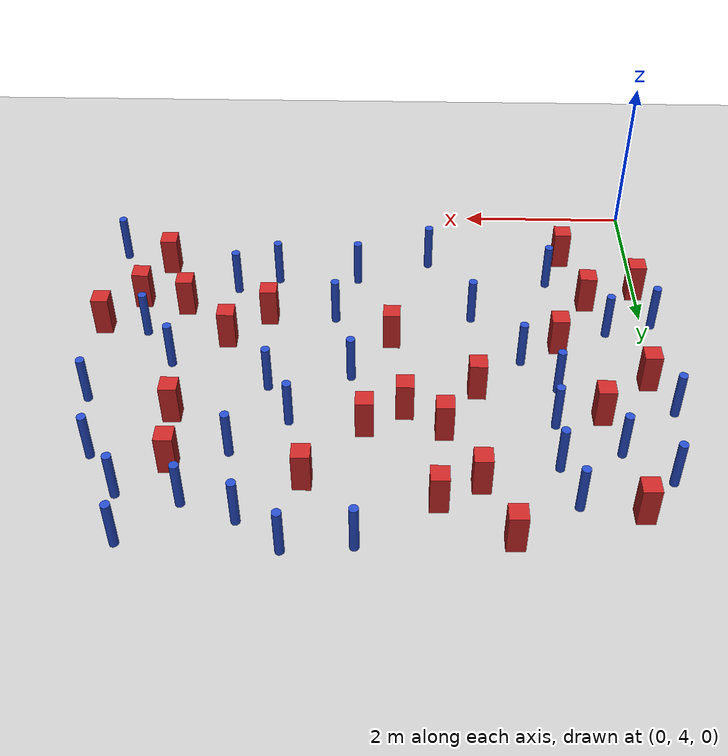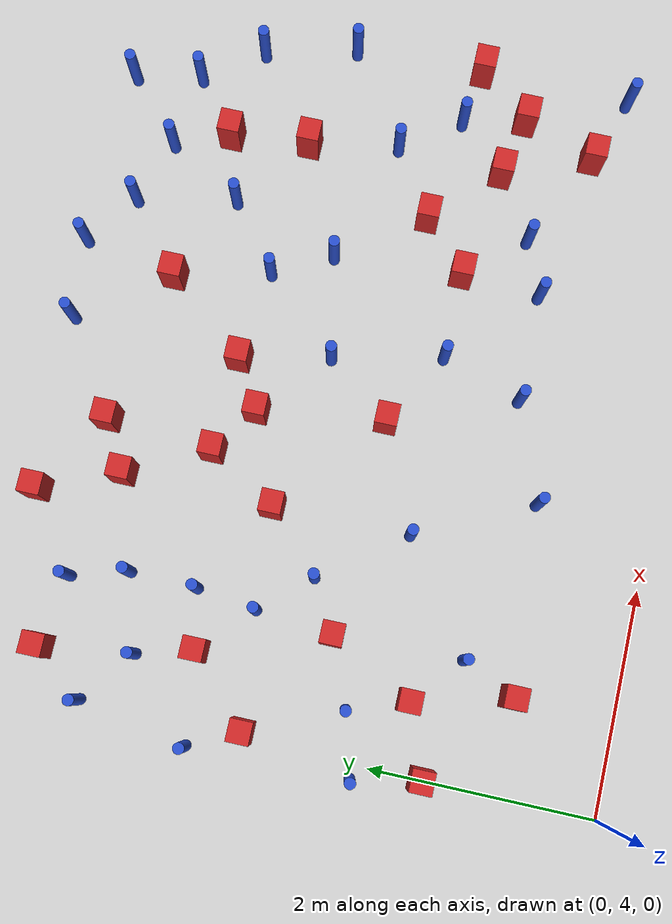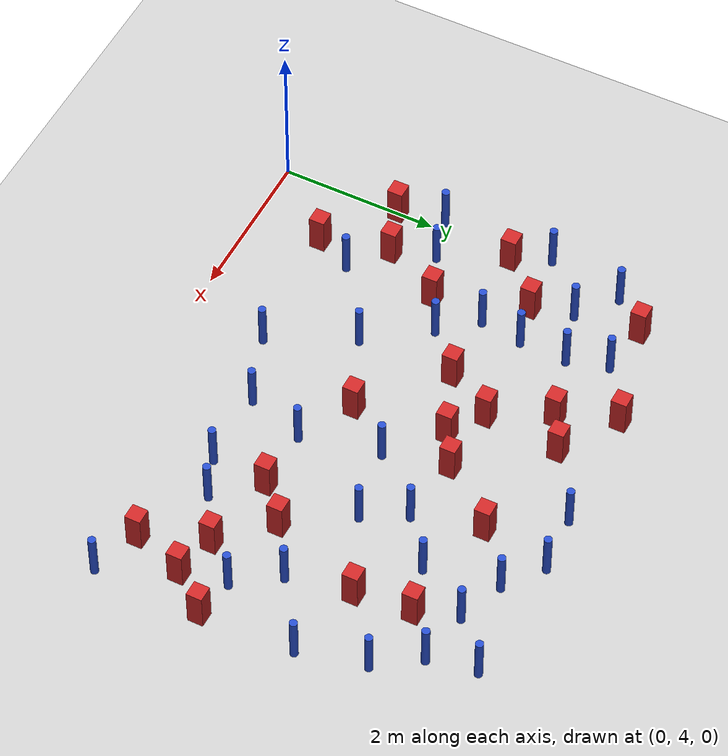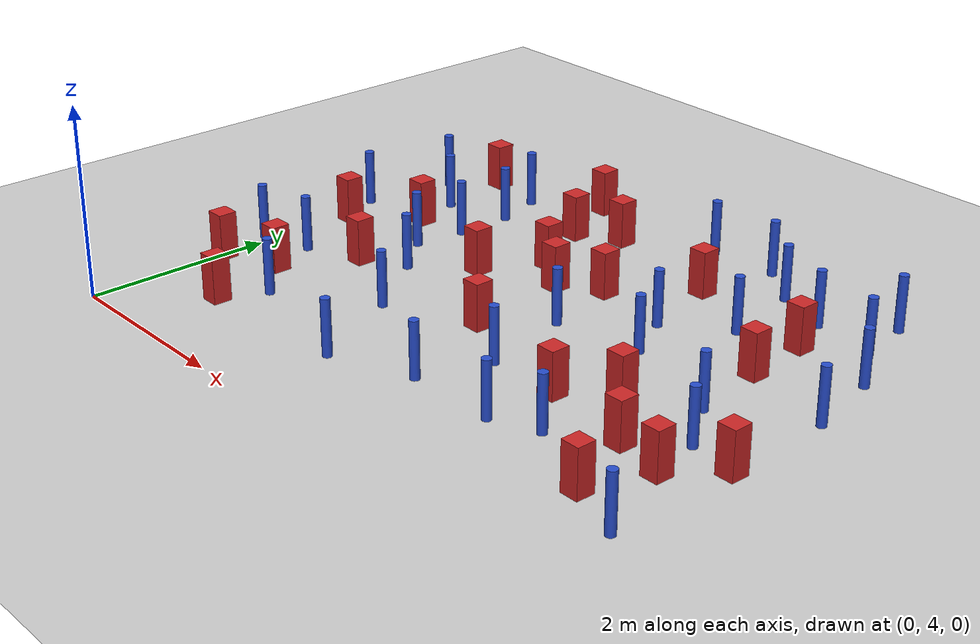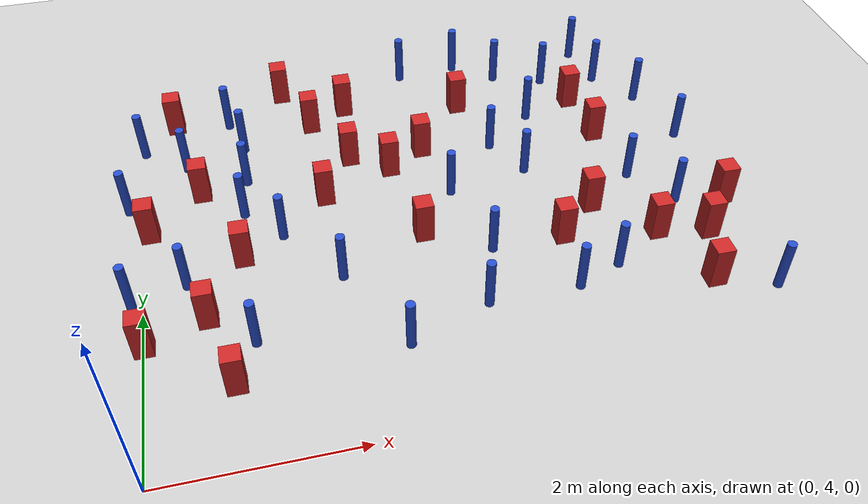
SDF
<sdf version="1.6">
 <world name="default">
  <model name="ground_plane">
   <static>1</static>
   <link name="link">
    <collision name="collision">
     <geometry><plane><normal>0 0 1</normal><size>100 100</size></plane></geometry>
     <surface><friction><ode><mu>100</mu><mu2>50</mu2></ode></friction></surface>
    </collision>
    <visual name="visual">
     <cast_shadows>0</cast_shadows>
     <geometry><plane><normal>0 0 1</normal><size>100 100</size></plane></geometry>
     <material>
      <ambient>1.0 1.0 1.0 1.0</ambient>
      <diffuse>0.8 0.8 0.8 1.0</diffuse>
      <specular>0.01 0.01 0.01 1.000000</specular>
     </material>
    </visual>
   </link>
  </model>
  <model name="pole_obstacle0">
   <static>true</static>
   <pose>0.0405761902183 8.55352330351 -9.47619616065e-06 5.49618799737e-07 2.36310414033e-07 -1.55090534817e-07</pose>
   <link name="link">
    <pose>0 0 0.3 0 -0 0</pose>
    <inertial>
     <mass>1</mass>
     <inertia><ixx>0.145833</ixx><ixy>0</ixy><ixz>0</ixz><iyy>0.145833</iyy><iyz>0</iyz><izz>0.125</izz></inertia>
    </inertial>
    <collision name="collision">
     <geometry><cylinder><radius>0.05</radius><length>.6</length></cylinder></geometry>
    </collision>
    <visual name="visual">
     <geometry><cylinder><radius>0.05</radius><length>.6</length></cylinder></geometry>
     <material>
      <script><name>Gazebo/Blue</name><uri>file://media/materials/scripts/gazebo.material</uri></script>
     </material>
    </visual>
   </link>
  </model>
  <model name="pole_obstacle3">
   <static>true</static>
   <pose>4.53063861416 9.14221263747 -9.47619616065e-06 5.49618799737e-07 2.36310414065e-07 -1.55090534796e-07</pose>
   <link name="link">
    <pose>0 0 0.3 0 -0 0</pose>
    <inertial>
     <mass>1</mass>
     <inertia><ixx>0.145833</ixx><ixy>0</ixy><ixz>0</ixz><iyy>0.145833</iyy><iyz>0</iyz><izz>0.125</izz></inertia>
    </inertial>
    <collision name="collision">
     <geometry><cylinder><radius>0.05</radius><length>.6</length></cylinder></geometry>
    </collision>
    <visual name="visual">
     <geometry><cylinder><radius>0.05</radius><length>.6</length></cylinder></geometry>
     <material>
      <script><name>Gazebo/Blue</name><uri>file://media/materials/scripts/gazebo.material</uri></script>
     </material>
    </visual>
   </link>
  </model>
  <model name="square_post_obstacle3">
   <static>true</static>
   <pose>2.48934977216 8.89152247828 -6.11067671241e-07 -5.50515727128e-06 -8.79689657224e-07 2.37013304536e-05</pose>
   <link name="link">
    <pose>0 0 0.25 0 -0 0</pose>
    <inertial>
     <mass>100</mass>
     <inertia>
      <ixx>0.166667</ixx>
      <ixy>0</ixy>
      <ixz>0</ixz>
      <iyy>0.166667</iyy>
      <iyz>0</iyz>
      <izz>0.166667</izz>
     </inertia>
    </inertial>
    <collision name="collision"><geometry><box><size>.2 .2 .5</size></box></geometry></collision>
    <visual name="visual">
     <geometry><box><size>.2 .2 .5</size></box></geometry>
     <material>
      <script><name>Gazebo/Red</name><uri>file://media/materials/scripts/gazebo.material</uri></script>
     </material>
    </visual>
   </link>
  </model>
  <model name="square_post_obstacle4">
   <static>true</static>
   <pose>2.0309213885 7.29000807328 -6.11067671241e-07 -5.50515727128e-06 -8.79689657224e-07 2.37013304536e-05</pose>
   <link name="link">
    <pose>0 0 0.25 0 -0 0</pose>
    <inertial>
     <mass>100</mass>
     <inertia>
      <ixx>0.166667</ixx>
      <ixy>0</ixy>
      <ixz>0</ixz>
      <iyy>0.166667</iyy>
      <iyz>0</iyz>
      <izz>0.166667</izz>
     </inertia>
    </inertial>
    <collision name="collision"><geometry><box><size>.2 .2 .5</size></box></geometry></collision>
    <visual name="visual">
     <geometry><box><size>.2 .2 .5</size></box></geometry>
     <material>
      <script><name>Gazebo/Red</name><uri>file://media/materials/scripts/gazebo.material</uri></script>
     </material>
    </visual>
   </link>
  </model>
  <model name="pole_obstacle9">
   <static>true</static>
   <pose>4.38289889013 7.25559182858 -9.47619616065e-06 5.49618799737e-07 2.36310414037e-07 -1.55090534814e-07</pose>
   <link name="link">
    <pose>0 0 0.3 0 -0 0</pose>
    <inertial>
     <mass>1</mass>
     <inertia><ixx>0.145833</ixx><ixy>0</ixy><ixz>0</ixz><iyy>0.145833</iyy><iyz>0</iyz><izz>0.125</izz></inertia>
    </inertial>
    <collision name="collision">
     <geometry><cylinder><radius>0.05</radius><length>.6</length></cylinder></geometry>
    </collision>
    <visual name="visual">
     <geometry><cylinder><radius>0.05</radius><length>.6</length></cylinder></geometry>
     <material>
      <script><name>Gazebo/Blue</name><uri>file://media/materials/scripts/gazebo.material</uri></script>
     </material>
    </visual>
   </link>
  </model>
  <model name="pole_obstacle19">
   <static>true</static>
   <pose>1.18842826301 7.77616489944 -9.47619616065e-06 5.49618799737e-07 2.36310414061e-07 -1.550905348e-07</pose>
   <link name="link">
    <pose>0 0 0.3 0 -0 0</pose>
    <inertial>
     <mass>1</mass>
     <inertia><ixx>0.145833</ixx><ixy>0</ixy><ixz>0</ixz><iyy>0.145833</iyy><iyz>0</iyz><izz>0.125</izz></inertia>
    </inertial>
    <collision name="collision">
     <geometry><cylinder><radius>0.05</radius><length>.6</length></cylinder></geometry>
    </collision>
    <visual name="visual">
     <geometry><cylinder><radius>0.05</radius><length>.6</length></cylinder></geometry>
     <material>
      <script><name>Gazebo/Blue</name><uri>file://media/materials/scripts/gazebo.material</uri></script>
     </material>
    </visual>
   </link>
  </model>
  <model name="pole_obstacle20">
   <static>true</static>
   <pose>1.05609687835 8.89631255664 -9.47619616065e-06 5.49618799737e-07 2.36310414046e-07 -1.55090534809e-07</pose>
   <link name="link">
    <pose>0 0 0.3 0 -0 0</pose>
    <inertial>
     <mass>1</mass>
     <inertia><ixx>0.145833</ixx><ixy>0</ixy><ixz>0</ixz><iyy>0.145833</iyy><iyz>0</iyz><izz>0.125</izz></inertia>
    </inertial>
    <collision name="collision">
     <geometry><cylinder><radius>0.05</radius><length>.6</length></cylinder></geometry>
    </collision>
    <visual name="visual">
     <geometry><cylinder><radius>0.05</radius><length>.6</length></cylinder></geometry>
     <material>
      <script><name>Gazebo/Blue</name><uri>file://media/materials/scripts/gazebo.material</uri></script>
     </material>
    </visual>
   </link>
  </model>
  <model name="pole_obstacle22">
   <static>true</static>
   <pose>4.70830090613 8.24106829523 -9.47619616065e-06 5.49618799737e-07 2.36310414065e-07 -1.55090534796e-07</pose>
   <link name="link">
    <pose>0 0 0.3 0 -0 0</pose>
    <inertial>
     <mass>1</mass>
     <inertia><ixx>0.145833</ixx><ixy>0</ixy><ixz>0</ixz><iyy>0.145833</iyy><iyz>0</iyz><izz>0.125</izz></inertia>
    </inertial>
    <collision name="collision">
     <geometry><cylinder><radius>0.05</radius><length>.6</length></cylinder></geometry>
    </collision>
    <visual name="visual">
     <geometry><cylinder><radius>0.05</radius><length>.6</length></cylinder></geometry>
     <material>
      <script><name>Gazebo/Blue</name><uri>file://media/materials/scripts/gazebo.material</uri></script>
     </material>
    </visual>
   </link>
  </model>
  <model name="pole_obstacle28">
   <static>true</static>
   <pose>2.54747611865 5.01578551102 -9.47619616065e-06 5.49618799738e-07 2.3631041406e-07 -1.55090534801e-07</pose>
   <link name="link">
    <pose>0 0 0.3 0 -0 0</pose>
    <inertial>
     <mass>1</mass>
     <inertia><ixx>0.145833</ixx><ixy>0</ixy><ixz>0</ixz><iyy>0.145833</iyy><iyz>0</iyz><izz>0.125</izz></inertia>
    </inertial>
    <collision name="collision">
     <geometry><cylinder><radius>0.05</radius><length>.6</length></cylinder></geometry>
    </collision>
    <visual name="visual">
     <geometry><cylinder><radius>0.05</radius><length>.6</length></cylinder></geometry>
     <material>
      <script><name>Gazebo/Blue</name><uri>file://media/materials/scripts/gazebo.material</uri></script>
     </material>
    </visual>
   </link>
  </model>
  <model name="square_post_obstacle27">
   <static>true</static>
   <pose>0.419440765279 8.99323714383 -6.11067671241e-07 -5.50515727128e-06 -8.79689657224e-07 2.37013304536e-05</pose>
   <link name="link">
    <pose>0 0 0.25 0 -0 0</pose>
    <inertial>
     <mass>100</mass>
     <inertia>
      <ixx>0.166667</ixx>
      <ixy>0</ixy>
      <ixz>0</ixz>
      <iyy>0.166667</iyy>
      <iyz>0</iyz>
      <izz>0.166667</izz>
     </inertia>
    </inertial>
    <collision name="collision"><geometry><box><size>.2 .2 .5</size></box></geometry></collision>
    <visual name="visual">
     <geometry><box><size>.2 .2 .5</size></box></geometry>
     <material>
      <script><name>Gazebo/Red</name><uri>file://media/materials/scripts/gazebo.material</uri></script>
     </material>
    </visual>
   </link>
  </model>
  <model name="square_post_obstacle39">
   <static>true</static>
   <pose>0.859296238766 4.90684172289 -6.11067671241e-07 -5.50515727128e-06 -8.79689657224e-07 2.37013304536e-05</pose>
   <link name="link">
    <pose>0 0 0.25 0 -0 0</pose>
    <inertial>
     <mass>100</mass>
     <inertia>
      <ixx>0.166667</ixx>
      <ixy>0</ixy>
      <ixz>0</ixz>
      <iyy>0.166667</iyy>
      <iyz>0</iyz>
      <izz>0.166667</izz>
     </inertia>
    </inertial>
    <collision name="collision"><geometry><box><size>.2 .2 .5</size></box></geometry></collision>
    <visual name="visual">
     <geometry><box><size>.2 .2 .5</size></box></geometry>
     <material>
      <script><name>Gazebo/Red</name><uri>file://media/materials/scripts/gazebo.material</uri></script>
     </material>
    </visual>
   </link>
  </model>
  <model name="square_post_obstacle45">
   <static>true</static>
   <pose>2.99517926249 6.4729525334 -6.11067671241e-07 -5.50515727128e-06 -8.79689657224e-07 2.37013304536e-05</pose>
   <link name="link">
    <pose>0 0 0.25 0 -0 0</pose>
    <inertial>
     <mass>100</mass>
     <inertia>
      <ixx>0.166667</ixx>
      <ixy>0</ixy>
      <ixz>0</ixz>
      <iyy>0.166667</iyy>
      <iyz>0</iyz>
      <izz>0.166667</izz>
     </inertia>
    </inertial>
    <collision name="collision"><geometry><box><size>.2 .2 .5</size></box></geometry></collision>
    <visual name="visual">
     <geometry><box><size>.2 .2 .5</size></box></geometry>
     <material>
      <script><name>Gazebo/Red</name><uri>file://media/materials/scripts/gazebo.material</uri></script>
     </material>
    </visual>
   </link>
  </model>
  <model name="pole_obstacle68">
   <static>true</static>
   <pose>3.42901976748 5.35178134434 -9.47619616065e-06 5.49618799738e-07 2.3631041406e-07 -1.55090534801e-07</pose>
   <link name="link">
    <pose>0 0 0.3 0 -0 0</pose>
    <inertial>
     <mass>1</mass>
     <inertia><ixx>0.145833</ixx><ixy>0</ixy><ixz>0</ixz><iyy>0.145833</iyy><iyz>0</iyz><izz>0.125</izz></inertia>
    </inertial>
    <collision name="collision">
     <geometry><cylinder><radius>0.05</radius><length>.6</length></cylinder></geometry>
    </collision>
    <visual name="visual">
     <geometry><cylinder><radius>0.05</radius><length>.6</length></cylinder></geometry>
     <material>
      <script><name>Gazebo/Blue</name><uri>file://media/materials/scripts/gazebo.material</uri></script>
     </material>
    </visual>
   </link>
  </model>
  <model name="square_post_obstacle59">
   <static>true</static>
   <pose>5.48688079807 5.92642891384 -6.11067671241e-07 -5.50515727128e-06 -8.79689657224e-07 2.37013304536e-05</pose>
   <link name="link">
    <pose>0 0 0.25 0 -0 0</pose>
    <inertial>
     <mass>100</mass>
     <inertia>
      <ixx>0.166667</ixx>
      <ixy>0</ixy>
      <ixz>0</ixz>
      <iyy>0.166667</iyy>
      <iyz>0</iyz>
      <izz>0.166667</izz>
     </inertia>
    </inertial>
    <collision name="collision"><geometry><box><size>.2 .2 .5</size></box></geometry></collision>
    <visual name="visual">
     <geometry><box><size>.2 .2 .5</size></box></geometry>
     <material>
      <script><name>Gazebo/Red</name><uri>file://media/materials/scripts/gazebo.material</uri></script>
     </material>
    </visual>
   </link>
  </model>
  <model name="pole_obstacle75">
   <static>true</static>
   <pose>3.44980734601 7.07527998909 -9.47619616065e-06 5.49618799738e-07 2.3631041406e-07 -1.55090534801e-07</pose>
   <link name="link">
    <pose>0 0 0.3 0 -0 0</pose>
    <inertial>
     <mass>1</mass>
     <inertia><ixx>0.145833</ixx><ixy>0</ixy><ixz>0</ixz><iyy>0.145833</iyy><iyz>0</iyz><izz>0.125</izz></inertia>
    </inertial>
    <collision name="collision">
     <geometry><cylinder><radius>0.05</radius><length>.6</length></cylinder></geometry>
    </collision>
    <visual name="visual">
     <geometry><cylinder><radius>0.05</radius><length>.6</length></cylinder></geometry>
     <material>
      <script><name>Gazebo/Blue</name><uri>file://media/materials/scripts/gazebo.material</uri></script>
     </material>
    </visual>
   </link>
  </model>
  <model name="pole_obstacle83">
   <static>true</static>
   <pose>3.67283193166 6.08723694189 -9.47619616065e-06 5.49618799738e-07 2.3631041406e-07 -1.55090534801e-07</pose>
   <link name="link">
    <pose>0 0 0.3 0 -0 0</pose>
    <inertial>
     <mass>1</mass>
     <inertia><ixx>0.145833</ixx><ixy>0</ixy><ixz>0</ixz><iyy>0.145833</iyy><iyz>0</iyz><izz>0.125</izz></inertia>
    </inertial>
    <collision name="collision">
     <geometry><cylinder><radius>0.05</radius><length>.6</length></cylinder></geometry>
    </collision>
    <visual name="visual">
     <geometry><cylinder><radius>0.05</radius><length>.6</length></cylinder></geometry>
     <material>
      <script><name>Gazebo/Blue</name><uri>file://media/materials/scripts/gazebo.material</uri></script>
     </material>
    </visual>
   </link>
  </model>
  <model name="square_post_obstacle73">
   <static>true</static>
   <pose>3.2736538085 7.87880397561 -6.11067671241e-07 -5.50515727128e-06 -8.79689657224e-07 2.37013304536e-05</pose>
   <link name="link">
    <pose>0 0 0.25 0 -0 0</pose>
    <inertial>
     <mass>100</mass>
     <inertia>
      <ixx>0.166667</ixx>
      <ixy>0</ixy>
      <ixz>0</ixz>
      <iyy>0.166667</iyy>
      <iyz>0</iyz>
      <izz>0.166667</izz>
     </inertia>
    </inertial>
    <collision name="collision"><geometry><box><size>.2 .2 .5</size></box></geometry></collision>
    <visual name="visual">
     <geometry><box><size>.2 .2 .5</size></box></geometry>
     <material>
      <script><name>Gazebo/Red</name><uri>file://media/materials/scripts/gazebo.material</uri></script>
     </material>
    </visual>
   </link>
  </model>
  <model name="pole_obstacle86">
   <static>true</static>
   <pose>0.448916070269 6.28702632633 -9.47619616065e-06 5.49618799737e-07 2.36310414065e-07 -1.55090534796e-07</pose>
   <link name="link">
    <pose>0 0 0.3 0 -0 0</pose>
    <inertial>
     <mass>1</mass>
     <inertia><ixx>0.145833</ixx><ixy>0</ixy><ixz>0</ixz><iyy>0.145833</iyy><iyz>0</iyz><izz>0.125</izz></inertia>
    </inertial>
    <collision name="collision">
     <geometry><cylinder><radius>0.05</radius><length>.6</length></cylinder></geometry>
    </collision>
    <visual name="visual">
     <geometry><cylinder><radius>0.05</radius><length>.6</length></cylinder></geometry>
     <material>
      <script><name>Gazebo/Blue</name><uri>file://media/materials/scripts/gazebo.material</uri></script>
     </material>
    </visual>
   </link>
  </model>
  <model name="square_post_obstacle76">
   <static>true</static>
   <pose>5.3180962215 8.42635804727 -6.11067671241e-07 -5.50515727128e-06 -8.79689657224e-07 2.37013304536e-05</pose>
   <link name="link">
    <pose>0 0 0.25 0 -0 0</pose>
    <inertial>
     <mass>100</mass>
     <inertia>
      <ixx>0.166667</ixx>
      <ixy>0</ixy>
      <ixz>0</ixz>
      <iyy>0.166667</iyy>
      <iyz>0</iyz>
      <izz>0.166667</izz>
     </inertia>
    </inertial>
    <collision name="collision"><geometry><box><size>.2 .2 .5</size></box></geometry></collision>
    <visual name="visual">
     <geometry><box><size>.2 .2 .5</size></box></geometry>
     <material>
      <script><name>Gazebo/Red</name><uri>file://media/materials/scripts/gazebo.material</uri></script>
     </material>
    </visual>
   </link>
  </model>
  <model name="pole_obstacle89">
   <static>true</static>
   <pose>1.08171206353 5.37697290941 -9.47619616065e-06 5.49618799737e-07 2.36310414061e-07 -1.550905348e-07</pose>
   <link name="link">
    <pose>0 0 0.3 0 -0 0</pose>
    <inertial>
     <mass>1</mass>
     <inertia><ixx>0.145833</ixx><ixy>0</ixy><ixz>0</ixz><iyy>0.145833</iyy><iyz>0</iyz><izz>0.125</izz></inertia>
    </inertial>
    <collision name="collision">
     <geometry><cylinder><radius>0.05</radius><length>.6</length></cylinder></geometry>
    </collision>
    <visual name="visual">
     <geometry><cylinder><radius>0.05</radius><length>.6</length></cylinder></geometry>
     <material>
      <script><name>Gazebo/Blue</name><uri>file://media/materials/scripts/gazebo.material</uri></script>
     </material>
    </visual>
   </link>
  </model>
  <model name="pole_obstacle96">
   <static>true</static>
   <pose>4.41311777781 5.3623191488 -9.47619616065e-06 5.49618799737e-07 2.36310414037e-07 -1.55090534814e-07</pose>
   <link name="link">
    <pose>0 0 0.3 0 -0 0</pose>
    <inertial>
     <mass>1</mass>
     <inertia><ixx>0.145833</ixx><ixy>0</ixy><ixz>0</ixz><iyy>0.145833</iyy><iyz>0</iyz><izz>0.125</izz></inertia>
    </inertial>
    <collision name="collision">
     <geometry><cylinder><radius>0.05</radius><length>.6</length></cylinder></geometry>
    </collision>
    <visual name="visual">
     <geometry><cylinder><radius>0.05</radius><length>.6</length></cylinder></geometry>
     <material>
      <script><name>Gazebo/Blue</name><uri>file://media/materials/scripts/gazebo.material</uri></script>
     </material>
    </visual>
   </link>
  </model>
  <model name="pole_obstacle106">
   <static>true</static>
   <pose>4.05709642306 9.49357864081 -9.47619616065e-06 5.49618799737e-07 2.36310414065e-07 -1.55090534796e-07</pose>
   <link name="link">
    <pose>0 0 0.3 0 -0 0</pose>
    <inertial>
     <mass>1</mass>
     <inertia><ixx>0.145833</ixx><ixy>0</ixy><ixz>0</ixz><iyy>0.145833</iyy><iyz>0</iyz><izz>0.125</izz></inertia>
    </inertial>
    <collision name="collision">
     <geometry><cylinder><radius>0.05</radius><length>.6</length></cylinder></geometry>
    </collision>
    <visual name="visual">
     <geometry><cylinder><radius>0.05</radius><length>.6</length></cylinder></geometry>
     <material>
      <script><name>Gazebo/Blue</name><uri>file://media/materials/scripts/gazebo.material</uri></script>
     </material>
    </visual>
   </link>
  </model>
  <model name="square_post_obstacle105">
   <static>true</static>
   <pose>0.0881795094278 7.11734922823 -6.11067671241e-07 -5.50515727128e-06 -8.79689657224e-07 2.37013304536e-05</pose>
   <link name="link">
    <pose>0 0 0.25 0 -0 0</pose>
    <inertial>
     <mass>100</mass>
     <inertia>
      <ixx>0.166667</ixx>
      <ixy>0</ixy>
      <ixz>0</ixz>
      <iyy>0.166667</iyy>
      <iyz>0</iyz>
      <izz>0.166667</izz>
     </inertia>
    </inertial>
    <collision name="collision"><geometry><box><size>.2 .2 .5</size></box></geometry></collision>
    <visual name="visual">
     <geometry><box><size>.2 .2 .5</size></box></geometry>
     <material>
      <script><name>Gazebo/Red</name><uri>file://media/materials/scripts/gazebo.material</uri></script>
     </material>
    </visual>
   </link>
  </model>
  <model name="square_post_obstacle109">
   <static>true</static>
   <pose>0.0169615862561 5.54200350497 -6.11067671241e-07 -5.50515727128e-06 -8.79689657224e-07 2.37013304536e-05</pose>
   <link name="link">
    <pose>0 0 0.25 0 -0 0</pose>
    <inertial>
     <mass>100</mass>
     <inertia>
      <ixx>0.166667</ixx>
      <ixy>0</ixy>
      <ixz>0</ixz>
      <iyy>0.166667</iyy>
      <iyz>0</iyz>
      <izz>0.166667</izz>
     </inertia>
    </inertial>
    <collision name="collision"><geometry><box><size>.2 .2 .5</size></box></geometry></collision>
    <visual name="visual">
     <geometry><box><size>.2 .2 .5</size></box></geometry>
     <material>
      <script><name>Gazebo/Red</name><uri>file://media/materials/scripts/gazebo.material</uri></script>
     </material>
    </visual>
   </link>
  </model>
  <model name="square_post_obstacle120">
   <static>true</static>
   <pose>1.05030276088 6.53369957781 -6.11067671241e-07 -5.50515727128e-06 -8.79689657224e-07 2.37013304536e-05</pose>
   <link name="link">
    <pose>0 0 0.25 0 -0 0</pose>
    <inertial>
     <mass>100</mass>
     <inertia>
      <ixx>0.166667</ixx>
      <ixy>0</ixy>
      <ixz>0</ixz>
      <iyy>0.166667</iyy>
      <iyz>0</iyz>
      <izz>0.166667</izz>
     </inertia>
    </inertial>
    <collision name="collision"><geometry><box><size>.2 .2 .5</size></box></geometry></collision>
    <visual name="visual">
     <geometry><box><size>.2 .2 .5</size></box></geometry>
     <material>
      <script><name>Gazebo/Red</name><uri>file://media/materials/scripts/gazebo.material</uri></script>
     </material>
    </visual>
   </link>
  </model>
  <model name="pole_obstacle129">
   <static>true</static>
   <pose>5.12197475747 8.93242740776 -9.47619616065e-06 5.49618799737e-07 2.36310414065e-07 -1.55090534796e-07</pose>
   <link name="link">
    <pose>0 0 0.3 0 -0 0</pose>
    <inertial>
     <mass>1</mass>
     <inertia><ixx>0.145833</ixx><ixy>0</ixy><ixz>0</ixz><iyy>0.145833</iyy><iyz>0</iyz><izz>0.125</izz></inertia>
    </inertial>
    <collision name="collision">
     <geometry><cylinder><radius>0.05</radius><length>.6</length></cylinder></geometry>
    </collision>
    <visual name="visual">
     <geometry><cylinder><radius>0.05</radius><length>.6</length></cylinder></geometry>
     <material>
      <script><name>Gazebo/Blue</name><uri>file://media/materials/scripts/gazebo.material</uri></script>
     </material>
    </visual>
   </link>
  </model>
  <model name="square_post_obstacle129">
   <static>true</static>
   <pose>2.41052315809 7.91564277236 -6.11067671241e-07 -5.50515727128e-06 -8.79689657224e-07 2.37013304536e-05</pose>
   <link name="link">
    <pose>0 0 0.25 0 -0 0</pose>
    <inertial>
     <mass>100</mass>
     <inertia>
      <ixx>0.166667</ixx>
      <ixy>0</ixy>
      <ixz>0</ixz>
      <iyy>0.166667</iyy>
      <iyz>0</iyz>
      <izz>0.166667</izz>
     </inertia>
    </inertial>
    <collision name="collision"><geometry><box><size>.2 .2 .5</size></box></geometry></collision>
    <visual name="visual">
     <geometry><box><size>.2 .2 .5</size></box></geometry>
     <material>
      <script><name>Gazebo/Red</name><uri>file://media/materials/scripts/gazebo.material</uri></script>
     </material>
    </visual>
   </link>
  </model>
  <model name="pole_obstacle137">
   <static>true</static>
   <pose>3.32719352197 9.43055606235 -9.4761961606e-06 5.49618799729e-07 2.36310414e-07 -1.55090534824e-07</pose>
   <link name="link">
    <pose>0 0 0.3 0 -0 0</pose>
    <inertial>
     <mass>1</mass>
     <inertia><ixx>0.145833</ixx><ixy>0</ixy><ixz>0</ixz><iyy>0.145833</iyy><iyz>0</iyz><izz>0.125</izz></inertia>
    </inertial>
    <collision name="collision">
     <geometry><cylinder><radius>0.05</radius><length>.6</length></cylinder></geometry>
    </collision>
    <visual name="visual">
     <geometry><cylinder><radius>0.05</radius><length>.6</length></cylinder></geometry>
     <material>
      <script><name>Gazebo/Blue</name><uri>file://media/materials/scripts/gazebo.material</uri></script>
     </material>
    </visual>
   </link>
  </model>
  <model name="square_post_obstacle138">
   <static>true</static>
   <pose>6.42681831969 6.2825763074 -6.11067671241e-07 -5.50515727128e-06 -8.79689657224e-07 2.37013304536e-05</pose>
   <link name="link">
    <pose>0 0 0.25 0 -0 0</pose>
    <inertial>
     <mass>100</mass>
     <inertia>
      <ixx>0.166667</ixx>
      <ixy>0</ixy>
      <ixz>0</ixz>
      <iyy>0.166667</iyy>
      <iyz>0</iyz>
      <izz>0.166667</izz>
     </inertia>
    </inertial>
    <collision name="collision"><geometry><box><size>.2 .2 .5</size></box></geometry></collision>
    <visual name="visual">
     <geometry><box><size>.2 .2 .5</size></box></geometry>
     <material>
      <script><name>Gazebo/Red</name><uri>file://media/materials/scripts/gazebo.material</uri></script>
     </material>
    </visual>
   </link>
  </model>
  <model name="pole_obstacle146">
   <static>true</static>
   <pose>0.52191436166 8.17544019166 -9.47619616065e-06 5.49618799738e-07 2.36310414034e-07 -1.55090534816e-07</pose>
   <link name="link">
    <pose>0 0 0.3 0 -0 0</pose>
    <inertial>
     <mass>1</mass>
     <inertia><ixx>0.145833</ixx><ixy>0</ixy><ixz>0</ixz><iyy>0.145833</iyy><iyz>0</iyz><izz>0.125</izz></inertia>
    </inertial>
    <collision name="collision">
     <geometry><cylinder><radius>0.05</radius><length>.6</length></cylinder></geometry>
    </collision>
    <visual name="visual">
     <geometry><cylinder><radius>0.05</radius><length>.6</length></cylinder></geometry>
     <material>
      <script><name>Gazebo/Blue</name><uri>file://media/materials/scripts/gazebo.material</uri></script>
     </material>
    </visual>
   </link>
  </model>
  <model name="square_post_obstacle144">
   <static>true</static>
   <pose>0.670268063216 7.65996840396 -6.11067671241e-07 -5.50515727128e-06 -8.79689657224e-07 2.37013304536e-05</pose>
   <link name="link">
    <pose>0 0 0.25 0 -0 0</pose>
    <inertial>
     <mass>100</mass>
     <inertia>
      <ixx>0.166667</ixx>
      <ixy>0</ixy>
      <ixz>0</ixz>
      <iyy>0.166667</iyy>
      <iyz>0</iyz>
      <izz>0.166667</izz>
     </inertia>
    </inertial>
    <collision name="collision"><geometry><box><size>.2 .2 .5</size></box></geometry></collision>
    <visual name="visual">
     <geometry><box><size>.2 .2 .5</size></box></geometry>
     <material>
      <script><name>Gazebo/Red</name><uri>file://media/materials/scripts/gazebo.material</uri></script>
     </material>
    </visual>
   </link>
  </model>
  <model name="square_post_obstacle150">
   <static>true</static>
   <pose>4.923127952 6.49803426642 -6.11067671241e-07 -5.50515727128e-06 -8.79689657224e-07 2.37013304536e-05</pose>
   <link name="link">
    <pose>0 0 0.25 0 -0 0</pose>
    <inertial>
     <mass>100</mass>
     <inertia>
      <ixx>0.166667</ixx>
      <ixy>0</ixy>
      <ixz>0</ixz>
      <iyy>0.166667</iyy>
      <iyz>0</iyz>
      <izz>0.166667</izz>
     </inertia>
    </inertial>
    <collision name="collision"><geometry><box><size>.2 .2 .5</size></box></geometry></collision>
    <visual name="visual">
     <geometry><box><size>.2 .2 .5</size></box></geometry>
     <material>
      <script><name>Gazebo/Red</name><uri>file://media/materials/scripts/gazebo.material</uri></script>
     </material>
    </visual>
   </link>
  </model>
  <model name="pole_obstacle154">
   <static>true</static>
   <pose>-0.112599958378 6.12842449445 -9.47619616065e-06 5.49618799737e-07 2.36310414059e-07 -1.55090534801e-07</pose>
   <link name="link">
    <pose>0 0 0.3 0 -0 0</pose>
    <inertial>
     <mass>1</mass>
     <inertia><ixx>0.145833</ixx><ixy>0</ixy><ixz>0</ixz><iyy>0.145833</iyy><iyz>0</iyz><izz>0.125</izz></inertia>
    </inertial>
    <collision name="collision">
     <geometry><cylinder><radius>0.05</radius><length>.6</length></cylinder></geometry>
    </collision>
    <visual name="visual">
     <geometry><cylinder><radius>0.05</radius><length>.6</length></cylinder></geometry>
     <material>
      <script><name>Gazebo/Blue</name><uri>file://media/materials/scripts/gazebo.material</uri></script>
     </material>
    </visual>
   </link>
  </model>
  <model name="square_post_obstacle153">
   <static>true</static>
   <pose>4.46610033857 6.09020601692 -6.11067671241e-07 -5.50515727128e-06 -8.79689657224e-07 2.37013304536e-05</pose>
   <link name="link">
    <pose>0 0 0.25 0 -0 0</pose>
    <inertial>
     <mass>100</mass>
     <inertia>
      <ixx>0.166667</ixx>
      <ixy>0</ixy>
      <ixz>0</ixz>
      <iyy>0.166667</iyy>
      <iyz>0</iyz>
      <izz>0.166667</izz>
     </inertia>
    </inertial>
    <collision name="collision"><geometry><box><size>.2 .2 .5</size></box></geometry></collision>
    <visual name="visual">
     <geometry><box><size>.2 .2 .5</size></box></geometry>
     <material>
      <script><name>Gazebo/Red</name><uri>file://media/materials/scripts/gazebo.material</uri></script>
     </material>
    </visual>
   </link>
  </model>
  <model name="pole_obstacle160">
   <static>true</static>
   <pose>4.10630034534 7.78017735653 -9.47619616065e-06 5.49618799737e-07 2.36310414037e-07 -1.55090534814e-07</pose>
   <link name="link">
    <pose>0 0 0.3 0 -0 0</pose>
    <inertial>
     <mass>1</mass>
     <inertia><ixx>0.145833</ixx><ixy>0</ixy><ixz>0</ixz><iyy>0.145833</iyy><iyz>0</iyz><izz>0.125</izz></inertia>
    </inertial>
    <collision name="collision">
     <geometry><cylinder><radius>0.05</radius><length>.6</length></cylinder></geometry>
    </collision>
    <visual name="visual">
     <geometry><cylinder><radius>0.05</radius><length>.6</length></cylinder></geometry>
     <material>
      <script><name>Gazebo/Blue</name><uri>file://media/materials/scripts/gazebo.material</uri></script>
     </material>
    </visual>
   </link>
  </model>
  <model name="square_post_obstacle158">
   <static>true</static>
   <pose>6.03580367699 5.80626216204 -6.11067671241e-07 -5.50515727128e-06 -8.79689657224e-07 2.37013304536e-05</pose>
   <link name="link">
    <pose>0 0 0.25 0 -0 0</pose>
    <inertial>
     <mass>100</mass>
     <inertia>
      <ixx>0.166667</ixx>
      <ixy>0</ixy>
      <ixz>0</ixz>
      <iyy>0.166667</iyy>
      <iyz>0</iyz>
      <izz>0.166667</izz>
     </inertia>
    </inertial>
    <collision name="collision"><geometry><box><size>.2 .2 .5</size></box></geometry></collision>
    <visual name="visual">
     <geometry><box><size>.2 .2 .5</size></box></geometry>
     <material>
      <script><name>Gazebo/Red</name><uri>file://media/materials/scripts/gazebo.material</uri></script>
     </material>
    </visual>
   </link>
  </model>
  <model name="pole_obstacle165">
   <static>true</static>
   <pose>6.38471615672 7.47156071899 -9.47619616065e-06 5.49618799737e-07 2.36310414037e-07 -1.55090534814e-07</pose>
   <link name="link">
    <pose>0 0 0.3 0 -0 0</pose>
    <inertial>
     <mass>1</mass>
     <inertia><ixx>0.145833</ixx><ixy>0</ixy><ixz>0</ixz><iyy>0.145833</iyy><iyz>0</iyz><izz>0.125</izz></inertia>
    </inertial>
    <collision name="collision">
     <geometry><cylinder><radius>0.05</radius><length>.6</length></cylinder></geometry>
    </collision>
    <visual name="visual">
     <geometry><cylinder><radius>0.05</radius><length>.6</length></cylinder></geometry>
     <material>
      <script><name>Gazebo/Blue</name><uri>file://media/materials/scripts/gazebo.material</uri></script>
     </material>
    </visual>
   </link>
  </model>
  <model name="pole_obstacle168">
   <static>true</static>
   <pose>6.41281476474 4.91166744635 -9.47619616065e-06 5.49618799737e-07 2.36310414037e-07 -1.55090534814e-07</pose>
   <link name="link">
    <pose>0 0 0.3 0 -0 0</pose>
    <inertial>
     <mass>1</mass>
     <inertia><ixx>0.145833</ixx><ixy>0</ixy><ixz>0</ixz><iyy>0.145833</iyy><iyz>0</iyz><izz>0.125</izz></inertia>
    </inertial>
    <collision name="collision">
     <geometry><cylinder><radius>0.05</radius><length>.6</length></cylinder></geometry>
    </collision>
    <visual name="visual">
     <geometry><cylinder><radius>0.05</radius><length>.6</length></cylinder></geometry>
     <material>
      <script><name>Gazebo/Blue</name><uri>file://media/materials/scripts/gazebo.material</uri></script>
     </material>
    </visual>
   </link>
  </model>
  <model name="pole_obstacle169">
   <static>true</static>
   <pose>5.90524390797 6.36980323745 -9.47619616065e-06 5.49618799737e-07 2.36310414037e-07 -1.55090534814e-07</pose>
   <link name="link">
    <pose>0 0 0.3 0 -0 0</pose>
    <inertial>
     <mass>1</mass>
     <inertia><ixx>0.145833</ixx><ixy>0</ixy><ixz>0</ixz><iyy>0.145833</iyy><iyz>0</iyz><izz>0.125</izz></inertia>
    </inertial>
    <collision name="collision">
     <geometry><cylinder><radius>0.05</radius><length>.6</length></cylinder></geometry>
    </collision>
    <visual name="visual">
     <geometry><cylinder><radius>0.05</radius><length>.6</length></cylinder></geometry>
     <material>
      <script><name>Gazebo/Blue</name><uri>file://media/materials/scripts/gazebo.material</uri></script>
     </material>
    </visual>
   </link>
  </model>
  <model name="square_post_obstacle169">
   <static>true</static>
   <pose>3.89744521205 8.63052550771 -6.11067671241e-07 -5.50515727128e-06 -8.79689657224e-07 2.37013304536e-05</pose>
   <link name="link">
    <pose>0 0 0.25 0 -0 0</pose>
    <inertial>
     <mass>100</mass>
     <inertia>
      <ixx>0.166667</ixx>
      <ixy>0</ixy>
      <ixz>0</ixz>
      <iyy>0.166667</iyy>
      <iyz>0</iyz>
      <izz>0.166667</izz>
     </inertia>
    </inertial>
    <collision name="collision"><geometry><box><size>.2 .2 .5</size></box></geometry></collision>
    <visual name="visual">
     <geometry><box><size>.2 .2 .5</size></box></geometry>
     <material>
      <script><name>Gazebo/Red</name><uri>file://media/materials/scripts/gazebo.material</uri></script>
     </material>
    </visual>
   </link>
  </model>
  <model name="square_post_obstacle180">
   <static>true</static>
   <pose>2.04404404054 8.64305823846 -6.11067671241e-07 -5.50515727128e-06 -8.79689657224e-07 2.37013304536e-05</pose>
   <link name="link">
    <pose>0 0 0.25 0 -0 0</pose>
    <inertial>
     <mass>100</mass>
     <inertia>
      <ixx>0.166667</ixx>
      <ixy>0</ixy>
      <ixz>0</ixz>
      <iyy>0.166667</iyy>
      <iyz>0</iyz>
      <izz>0.166667</izz>
     </inertia>
    </inertial>
    <collision name="collision"><geometry><box><size>.2 .2 .5</size></box></geometry></collision>
    <visual name="visual">
     <geometry><box><size>.2 .2 .5</size></box></geometry>
     <material>
      <script><name>Gazebo/Red</name><uri>file://media/materials/scripts/gazebo.material</uri></script>
     </material>
    </visual>
   </link>
  </model>
  <model name="pole_obstacle181">
   <static>true</static>
   <pose>6.18020210904 8.3071595469 -9.47619616065e-06 5.49618799737e-07 2.36310414065e-07 -1.55090534796e-07</pose>
   <link name="link">
    <pose>0 0 0.3 0 -0 0</pose>
    <inertial>
     <mass>1</mass>
     <inertia><ixx>0.145833</ixx><ixy>0</ixy><ixz>0</ixz><iyy>0.145833</iyy><iyz>0</iyz><izz>0.125</izz></inertia>
    </inertial>
    <collision name="collision">
     <geometry><cylinder><radius>0.05</radius><length>.6</length></cylinder></geometry>
    </collision>
    <visual name="visual">
     <geometry><cylinder><radius>0.05</radius><length>.6</length></cylinder></geometry>
     <material>
      <script><name>Gazebo/Blue</name><uri>file://media/materials/scripts/gazebo.material</uri></script>
     </material>
    </visual>
   </link>
  </model>
  <model name="square_post_obstacle189">
   <static>true</static>
   <pose>1.74799102905 9.35155316833 -6.11067671241e-07 -5.50515727128e-06 -8.79689657224e-07 2.37013304536e-05</pose>
   <link name="link">
    <pose>0 0 0.25 0 -0 0</pose>
    <inertial>
     <mass>100</mass>
     <inertia>
      <ixx>0.166667</ixx>
      <ixy>0</ixy>
      <ixz>0</ixz>
      <iyy>0.166667</iyy>
      <iyz>0</iyz>
      <izz>0.166667</izz>
     </inertia>
    </inertial>
    <collision name="collision"><geometry><box><size>.2 .2 .5</size></box></geometry></collision>
    <visual name="visual">
     <geometry><box><size>.2 .2 .5</size></box></geometry>
     <material>
      <script><name>Gazebo/Red</name><uri>file://media/materials/scripts/gazebo.material</uri></script>
     </material>
    </visual>
   </link>
  </model>
  <model name="square_post_obstacle193">
   <static>true</static>
   <pose>5.39128732293 7.70787386522 -6.11067671241e-07 -5.50515727128e-06 -8.79689657224e-07 2.37013304536e-05</pose>
   <link name="link">
    <pose>0 0 0.25 0 -0 0</pose>
    <inertial>
     <mass>100</mass>
     <inertia>
      <ixx>0.166667</ixx>
      <ixy>0</ixy>
      <ixz>0</ixz>
      <iyy>0.166667</iyy>
      <iyz>0</iyz>
      <izz>0.166667</izz>
     </inertia>
    </inertial>
    <collision name="collision"><geometry><box><size>.2 .2 .5</size></box></geometry></collision>
    <visual name="visual">
     <geometry><box><size>.2 .2 .5</size></box></geometry>
     <material>
      <script><name>Gazebo/Red</name><uri>file://media/materials/scripts/gazebo.material</uri></script>
     </material>
    </visual>
   </link>
  </model>
  <model name="square_post_obstacle195">
   <static>true</static>
   <pose>5.79994931853 5.13713995528 -6.11067671241e-07 -5.50515727128e-06 -8.79689657224e-07 2.37013304536e-05</pose>
   <link name="link">
    <pose>0 0 0.25 0 -0 0</pose>
    <inertial>
     <mass>100</mass>
     <inertia>
      <ixx>0.166667</ixx>
      <ixy>0</ixy>
      <ixz>0</ixz>
      <iyy>0.166667</iyy>
      <iyz>0</iyz>
      <izz>0.166667</izz>
     </inertia>
    </inertial>
    <collision name="collision"><geometry><box><size>.2 .2 .5</size></box></geometry></collision>
    <visual name="visual">
     <geometry><box><size>.2 .2 .5</size></box></geometry>
     <material>
      <script><name>Gazebo/Red</name><uri>file://media/materials/scripts/gazebo.material</uri></script>
     </material>
    </visual>
   </link>
  </model>
  <model name="pole_obstacle189">
   <static>true</static>
   <pose>1.49723815788 6.79377564972 -9.47619616065e-06 5.49618799737e-07 2.36310414061e-07 -1.550905348e-07</pose>
   <link name="link">
    <pose>0 0 0.3 0 -0 0</pose>
    <inertial>
     <mass>1</mass>
     <inertia><ixx>0.145833</ixx><ixy>0</ixy><ixz>0</ixz><iyy>0.145833</iyy><iyz>0</iyz><izz>0.125</izz></inertia>
    </inertial>
    <collision name="collision">
     <geometry><cylinder><radius>0.05</radius><length>.6</length></cylinder></geometry>
    </collision>
    <visual name="visual">
     <geometry><cylinder><radius>0.05</radius><length>.6</length></cylinder></geometry>
     <material>
      <script><name>Gazebo/Blue</name><uri>file://media/materials/scripts/gazebo.material</uri></script>
     </material>
    </visual>
   </link>
  </model>
  <model name="square_post_obstacle203">
   <static>true</static>
   <pose>0.641199290368 5.7694347095 -6.11067671241e-07 -5.50515727128e-06 -8.79689657224e-07 2.37013304536e-05</pose>
   <link name="link">
    <pose>0 0 0.25 0 -0 0</pose>
    <inertial>
     <mass>100</mass>
     <inertia>
      <ixx>0.166667</ixx>
      <ixy>0</ixy>
      <ixz>0</ixz>
      <iyy>0.166667</iyy>
      <iyz>0</iyz>
      <izz>0.166667</izz>
     </inertia>
    </inertial>
    <collision name="collision"><geometry><box><size>.2 .2 .5</size></box></geometry></collision>
    <visual name="visual">
     <geometry><box><size>.2 .2 .5</size></box></geometry>
     <material>
      <script><name>Gazebo/Red</name><uri>file://media/materials/scripts/gazebo.material</uri></script>
     </material>
    </visual>
   </link>
  </model>
  <model name="pole_obstacle193">
   <static>true</static>
   <pose>-0.143290544051 7.56815617634 -9.47619616065e-06 5.49618799737e-07 2.36310414062e-07 -1.550905348e-07</pose>
   <link name="link">
    <pose>0 0 0.3 0 -0 0</pose>
    <inertial>
     <mass>1</mass>
     <inertia><ixx>0.145833</ixx><ixy>0</ixy><ixz>0</ixz><iyy>0.145833</iyy><iyz>0</iyz><izz>0.125</izz></inertia>
    </inertial>
    <collision name="collision">
     <geometry><cylinder><radius>0.05</radius><length>.6</length></cylinder></geometry>
    </collision>
    <visual name="visual">
     <geometry><cylinder><radius>0.05</radius><length>.6</length></cylinder></geometry>
     <material>
      <script><name>Gazebo/Blue</name><uri>file://media/materials/scripts/gazebo.material</uri></script>
     </material>
    </visual>
   </link>
  </model>
  <model name="pole_obstacle196">
   <static>true</static>
   <pose>4.90816661231 5.56369264937 -9.47619616065e-06 5.49618799737e-07 2.36310414037e-07 -1.55090534814e-07</pose>
   <link name="link">
    <pose>0 0 0.3 0 -0 0</pose>
    <inertial>
     <mass>1</mass>
     <inertia><ixx>0.145833</ixx><ixy>0</ixy><ixz>0</ixz><iyy>0.145833</iyy><iyz>0</iyz><izz>0.125</izz></inertia>
    </inertial>
    <collision name="collision">
     <geometry><cylinder><radius>0.05</radius><length>.6</length></cylinder></geometry>
    </collision>
    <visual name="visual">
     <geometry><cylinder><radius>0.05</radius><length>.6</length></cylinder></geometry>
     <material>
      <script><name>Gazebo/Blue</name><uri>file://media/materials/scripts/gazebo.material</uri></script>
     </material>
    </visual>
   </link>
  </model>
  <model name="pole_obstacle200">
   <static>true</static>
   <pose>2.04202431275 6.05148932017 -9.47619616065e-06 5.49618799737e-07 2.36310414059e-07 -1.55090534802e-07</pose>
   <link name="link">
    <pose>0 0 0.3 0 -0 0</pose>
    <inertial>
     <mass>1</mass>
     <inertia><ixx>0.145833</ixx><ixy>0</ixy><ixz>0</ixz><iyy>0.145833</iyy><iyz>0</iyz><izz>0.125</izz></inertia>
    </inertial>
    <collision name="collision">
     <geometry><cylinder><radius>0.05</radius><length>.6</length></cylinder></geometry>
    </collision>
    <visual name="visual">
     <geometry><cylinder><radius>0.05</radius><length>.6</length></cylinder></geometry>
     <material>
      <script><name>Gazebo/Blue</name><uri>file://media/materials/scripts/gazebo.material</uri></script>
     </material>
    </visual>
   </link>
  </model>
  <model name="pole_obstacle201">
   <static>true</static>
   <pose>5.81136114328 8.82912720811 -9.47619616065e-06 5.49618799737e-07 2.36310414065e-07 -1.55090534796e-07</pose>
   <link name="link">
    <pose>0 0 0.3 0 -0 0</pose>
    <inertial>
     <mass>1</mass>
     <inertia><ixx>0.145833</ixx><ixy>0</ixy><ixz>0</ixz><iyy>0.145833</iyy><iyz>0</iyz><izz>0.125</izz></inertia>
    </inertial>
    <collision name="collision">
     <geometry><cylinder><radius>0.05</radius><length>.6</length></cylinder></geometry>
    </collision>
    <visual name="visual">
     <geometry><cylinder><radius>0.05</radius><length>.6</length></cylinder></geometry>
     <material>
      <script><name>Gazebo/Blue</name><uri>file://media/materials/scripts/gazebo.material</uri></script>
     </material>
    </visual>
   </link>
  </model>
  <model name="square_post_obstacle213">
   <static>true</static>
   <pose>2.83962847834 7.61876472704 -6.11067671241e-07 -5.50515727128e-06 -8.79689657224e-07 2.37013304536e-05</pose>
   <link name="link">
    <pose>0 0 0.25 0 -0 0</pose>
    <inertial>
     <mass>100</mass>
     <inertia>
      <ixx>0.166667</ixx>
      <ixy>0</ixy>
      <ixz>0</ixz>
      <iyy>0.166667</iyy>
      <iyz>0</iyz>
      <izz>0.166667</izz>
     </inertia>
    </inertial>
    <collision name="collision"><geometry><box><size>.2 .2 .5</size></box></geometry></collision>
    <visual name="visual">
     <geometry><box><size>.2 .2 .5</size></box></geometry>
     <material>
      <script><name>Gazebo/Red</name><uri>file://media/materials/scripts/gazebo.material</uri></script>
     </material>
    </visual>
   </link>
  </model>
  <model name="pole_obstacle205">
   <static>true</static>
   <pose>1.20219417448 8.38469933287 -9.47619616065e-06 5.49618799737e-07 2.36310414046e-07 -1.55090534809e-07</pose>
   <link name="link">
    <pose>0 0 0.3 0 -0 0</pose>
    <inertial>
     <mass>1</mass>
     <inertia><ixx>0.145833</ixx><ixy>0</ixy><ixz>0</ixz><iyy>0.145833</iyy><iyz>0</iyz><izz>0.125</izz></inertia>
    </inertial>
    <collision name="collision">
     <geometry><cylinder><radius>0.05</radius><length>.6</length></cylinder></geometry>
    </collision>
    <visual name="visual">
     <geometry><cylinder><radius>0.05</radius><length>.6</length></cylinder></geometry>
     <material>
      <script><name>Gazebo/Blue</name><uri>file://media/materials/scripts/gazebo.material</uri></script>
     </material>
    </visual>
   </link>
  </model>
  <model name="pole_obstacle213">
   <static>true</static>
   <pose>5.53157139023 6.89642672949 -9.47619616065e-06 5.49618799737e-07 2.36310414037e-07 -1.55090534814e-07</pose>
   <link name="link">
    <pose>0 0 0.3 0 -0 0</pose>
    <inertial>
     <mass>1</mass>
     <inertia><ixx>0.145833</ixx><ixy>0</ixy><ixz>0</ixz><iyy>0.145833</iyy><iyz>0</iyz><izz>0.125</izz></inertia>
    </inertial>
    <collision name="collision">
     <geometry><cylinder><radius>0.05</radius><length>.6</length></cylinder></geometry>
    </collision>
    <visual name="visual">
     <geometry><cylinder><radius>0.05</radius><length>.6</length></cylinder></geometry>
     <material>
      <script><name>Gazebo/Blue</name><uri>file://media/materials/scripts/gazebo.material</uri></script>
     </material>
    </visual>
   </link>
  </model>
  <model name="pole_obstacle216">
   <static>true</static>
   <pose>5.69550625494 9.43366761344 -9.47619616065e-06 5.49618799737e-07 2.36310414065e-07 -1.55090534796e-07</pose>
   <link name="link">
    <pose>0 0 0.3 0 -0 0</pose>
    <inertial>
     <mass>1</mass>
     <inertia><ixx>0.145833</ixx><ixy>0</ixy><ixz>0</ixz><iyy>0.145833</iyy><iyz>0</iyz><izz>0.125</izz></inertia>
    </inertial>
    <collision name="collision">
     <geometry><cylinder><radius>0.05</radius><length>.6</length></cylinder></geometry>
    </collision>
    <visual name="visual">
     <geometry><cylinder><radius>0.05</radius><length>.6</length></cylinder></geometry>
     <material>
      <script><name>Gazebo/Blue</name><uri>file://media/materials/scripts/gazebo.material</uri></script>
     </material>
    </visual>
   </link>
  </model>
  <model name="pole_obstacle221">
   <static>true</static>
   <pose>1.11377898487 7.23206537777 -9.47619616065e-06 5.49618799737e-07 2.36310414061e-07 -1.550905348e-07</pose>
   <link name="link">
    <pose>0 0 0.3 0 -0 0</pose>
    <inertial>
     <mass>1</mass>
     <inertia><ixx>0.145833</ixx><ixy>0</ixy><ixz>0</ixz><iyy>0.145833</iyy><iyz>0</iyz><izz>0.125</izz></inertia>
    </inertial>
    <collision name="collision">
     <geometry><cylinder><radius>0.05</radius><length>.6</length></cylinder></geometry>
    </collision>
    <visual name="visual">
     <geometry><cylinder><radius>0.05</radius><length>.6</length></cylinder></geometry>
     <material>
      <script><name>Gazebo/Blue</name><uri>file://media/materials/scripts/gazebo.material</uri></script>
     </material>
    </visual>
   </link>
  </model>
 </world>
</sdf>
